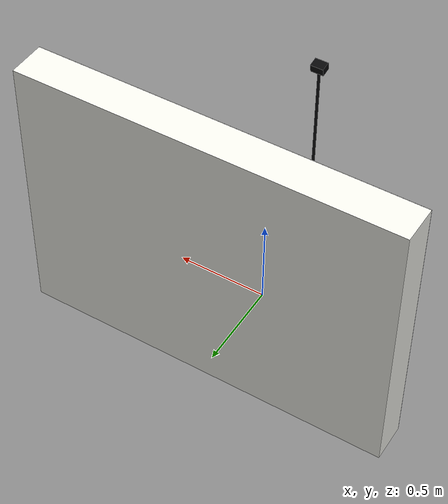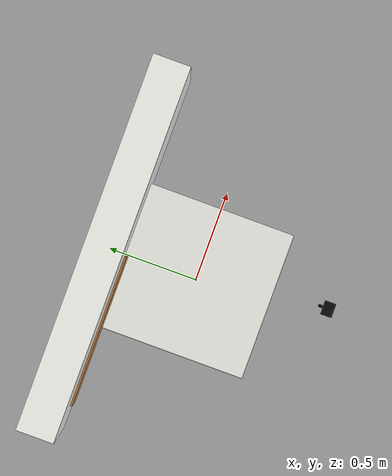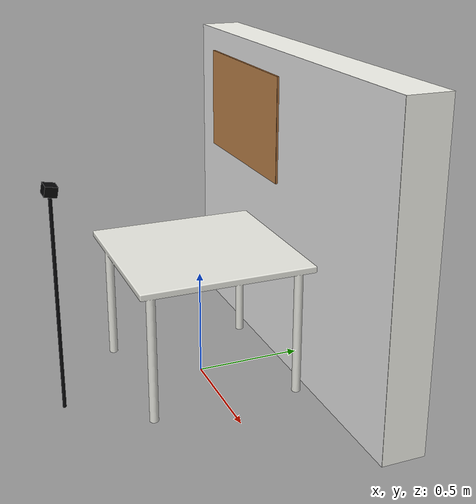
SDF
<?xml version="1.0"?>
<sdf version="1.11">
  <model name="training_workspace">
    <static>true</static>

    <link name="furniture">
      <collision name="table_collision">
        <pose>0 0 0.615 0 0 0</pose>
        <geometry>
          <box><size>0.80 0.80 0.030</size></box>
        </geometry>
      </collision>
      <visual name="white_table">
        <pose>0 0 0.60 0 0 0</pose>
        <geometry>
          <mesh><uri>meshes/table.stl</uri></mesh>
        </geometry>
        <material>
          <ambient>0.83 0.83 0.80 1</ambient>
          <diffuse>0.92 0.92 0.89 1</diffuse>
          <specular>0.12 0.12 0.12 1</specular>
          <pbr><metal><roughness>0.72</roughness><metalness>0.0</metalness></metal></pbr>
        </material>
      </visual>

      <collision name="wall_collision">
        <pose>0 0.60 0.75 0 0 0</pose>
        <geometry>
          <mesh><uri>meshes/wall.stl</uri></mesh>
        </geometry>
      </collision>
      <visual name="wall_mesh">
        <pose>0 0.60 0.75 0 0 0</pose>
        <geometry>
          <mesh><uri>meshes/wall.stl</uri></mesh>
        </geometry>
        <material>
          <ambient>0.88 0.88 0.85 1</ambient>
          <diffuse>0.96 0.96 0.93 1</diffuse>
          <pbr><metal><roughness>0.90</roughness><metalness>0.0</metalness></metal></pbr>
        </material>
      </visual>
      <!-- A shallow image plane reproduces the wall appearance seen by the cameras. -->
      <visual name="wall_texture">
        <pose>0 0.399 0.75 0 0 0</pose>
        <geometry>
          <plane><normal>0 -1 0</normal><size>2.0 1.5</size></plane>
        </geometry>
        <material>
          <ambient>1 1 1 1</ambient>
          <diffuse>1 1 1 1</diffuse>
          <specular>0.02 0.02 0.02 1</specular>
          <pbr>
            <metal>
              <albedo_map>model://training_workspace/materials/textures/wall.png</albedo_map>
              <roughness>0.95</roughness>
              <metalness>0.0</metalness>
            </metal>
          </pbr>
        </material>
      </visual>

      <collision name="board_collision">
        <pose>-0.40 0.388 1.14 0 0 0</pose>
        <geometry>
          <mesh><uri>meshes/board.stl</uri></mesh>
        </geometry>
      </collision>
      <visual name="board_mesh">
        <pose>-0.40 0.388 1.14 0 0 0</pose>
        <geometry>
          <mesh><uri>meshes/board.stl</uri></mesh>
        </geometry>
        <material>
          <ambient>0.45 0.27 0.12 1</ambient>
          <diffuse>0.65 0.42 0.22 1</diffuse>
          <pbr><metal><roughness>0.90</roughness><metalness>0.0</metalness></metal></pbr>
        </material>
      </visual>
      <visual name="cork_texture">
        <pose>-0.40 0.377 1.14 0 0 0</pose>
        <geometry>
          <plane><normal>0 -1 0</normal><size>0.80 0.50</size></plane>
        </geometry>
        <material>
          <ambient>0.72 0.48 0.25 1</ambient>
          <diffuse>0.82 0.57 0.32 1</diffuse>
          <specular>0.01 0.01 0.01 1</specular>
          <pbr>
            <metal>
              <albedo_map>model://training_workspace/materials/textures/board.png</albedo_map>
              <roughness>0.92</roughness>
              <metalness>0.0</metalness>
            </metal>
          </pbr>
        </material>
      </visual>

      <!-- Fixed UGREEN-style external camera used as observation.images.left. -->
      <visual name="left_camera_body">
        <pose>0.10 -0.68 1.02 0 0.18 1.57079632679</pose>
        <geometry><box><size>0.055 0.075 0.045</size></box></geometry>
        <material>
          <ambient>0.015 0.015 0.020 1</ambient>
          <diffuse>0.025 0.025 0.030 1</diffuse>
          <pbr><metal><roughness>0.4</roughness><metalness>0.15</metalness></metal></pbr>
        </material>
      </visual>
      <visual name="left_camera_stand">
        <pose>0.10 -0.68 0.505 0 0 0</pose>
        <geometry><cylinder><radius>0.008</radius><length>0.99</length></cylinder></geometry>
        <material><ambient>0.03 0.03 0.035 1</ambient><diffuse>0.04 0.04 0.045 1</diffuse></material>
      </visual>

      <sensor name="left_camera" type="camera">
        <pose>0.10 -0.68 1.02 0 0.18 1.57079632679</pose>
        <always_on>true</always_on>
        <update_rate>30</update_rate>
        <topic>/so101/camera/left/image</topic>
        <camera name="left">
          <horizontal_fov>1.0471975512</horizontal_fov>
          <image><width>640</width><height>480</height><format>R8G8B8</format></image>
          <clip><near>0.03</near><far>5.0</far></clip>
          <noise><type>gaussian</type><mean>0.0</mean><stddev>0.002</stddev></noise>
        </camera>
      </sensor>
    </link>
  </model>
</sdf>
